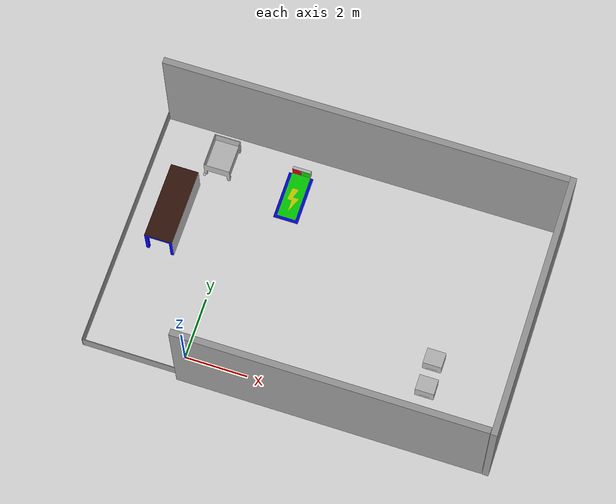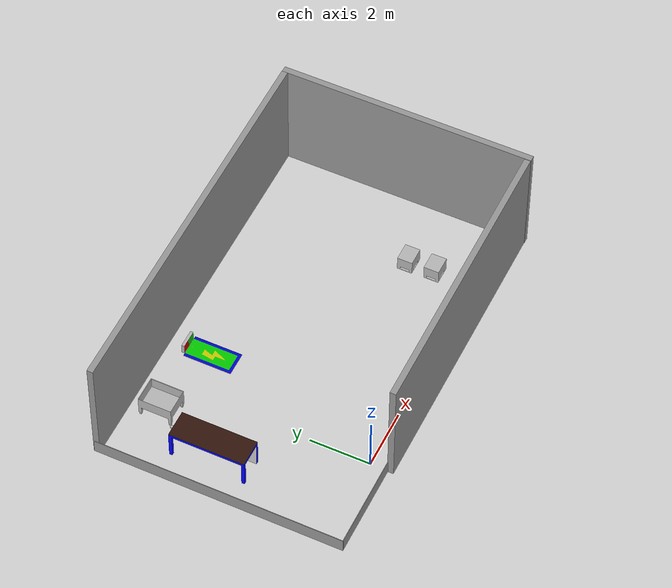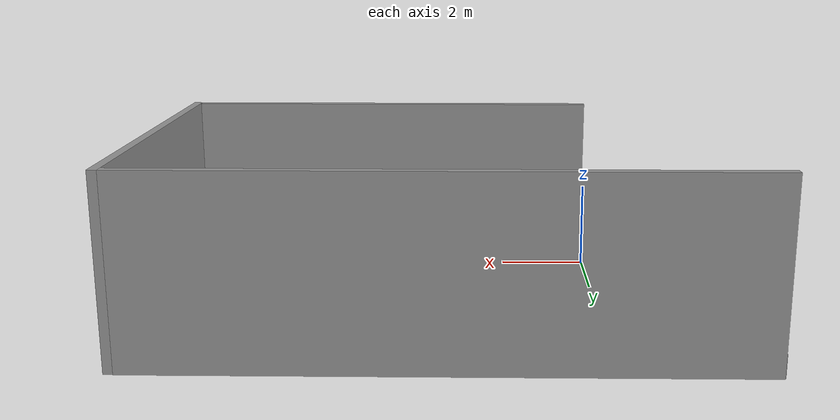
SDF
<sdf version="1.6">
 <world name="default">
  <light name="sun" type="directional">
   <pose>0 0 10 0 -0 0</pose>
   <diffuse>0.8 0.8 0.8 1</diffuse>
   <specular>0.2 0.2 0.2 1</specular>
   <attenuation>
    <range>1000</range>
    <constant>0.9</constant>
    <linear>0.01</linear>
    <quadratic>0.001</quadratic>
   </attenuation>
   <direction>-0.5 0.1 -0.9</direction>
  </light>
  <gravity>0 0 -9.8</gravity>
  <magnetic_field>6e-06 2.3e-05 -4.2e-05</magnetic_field>
  <atmosphere type="adiabatic"/>
  <physics name="default_physics" default="0" type="ode">
   <max_step_size>0.001</max_step_size>
   <real_time_factor>1</real_time_factor>
   <real_time_update_rate>1000</real_time_update_rate>
  </physics>
  <scene><ambient>0.4 0.4 0.4 1</ambient><background>0.7 0.7 0.7 1</background><shadows>1</shadows></scene>
  <audio><device>default</device></audio>
  <spherical_coordinates>
   <surface_model>EARTH_WGS84</surface_model>
   <latitude_deg>0</latitude_deg>
   <longitude_deg>0</longitude_deg>
   <elevation>0</elevation>
   <heading_deg>0</heading_deg>
  </spherical_coordinates>
  <model name="big_wall_20">
   <pose>3.29502 7.5505 0 0 -0 0</pose>
   <link name="Wall_0">
    <collision name="Wall_0_Collision">
     <geometry><box><size>12.8 0.2 4</size></box></geometry>
     <pose>0 0 2 0 -0 0</pose>
    </collision>
    <visual name="Wall_0_Visual">
     <pose>0 0 2 0 -0 0</pose>
     <geometry><box><size>12.8 0.2 4</size></box></geometry>
     <material>
      <script><uri>file://media/materials/scripts/gazebo.material</uri><name>Gazebo/Grey</name></script>
      <ambient>1 1 1 1</ambient>
     </material>
     <meta><layer>0</layer></meta>
    </visual>
   </link>
   <static>1</static>
  </model>
  <model name="middle_wall_20">
   <pose>4.83212 -0.651579 0 0 -0 0</pose>
   <link name="Wall_1">
    <collision name="Wall_1_Collision">
     <geometry><box><size>9.7 0.2 4</size></box></geometry>
     <pose>0 0 2 0 -0 0</pose>
    </collision>
    <visual name="Wall_1_Visual">
     <pose>0 0 2 0 -0 0</pose>
     <geometry><box><size>9.7 0.2 4</size></box></geometry>
     <material>
      <script><uri>file://media/materials/scripts/gazebo.material</uri><name>Gazebo/Grey</name></script>
      <ambient>1 1 1 1</ambient>
     </material>
     <meta><layer>0</layer></meta>
    </visual>
   </link>
   <static>1</static>
  </model>
  <model name="little_wall_840">
   <pose>9.79443 3.43939 0 0 0 -1.57021</pose>
   <link name="Wall_0">
    <collision name="Wall_0_Collision">
     <geometry><box><size>8.4 0.2 4</size></box></geometry>
     <pose>0 0 2 0 -0 0</pose>
    </collision>
    <visual name="Wall_0_Visual">
     <pose>0 0 2 0 -0 0</pose>
     <geometry><box><size>8.4 0.2 4</size></box></geometry>
     <material>
      <script><uri>file://media/materials/scripts/gazebo.material</uri><name>Gazebo/Grey</name></script>
      <ambient>1 1 1 1</ambient>
     </material>
     <meta><layer>0</layer></meta>
    </visual>
   </link>
   <static>1</static>
  </model>
  <model name="koruma_duvarı">
   <pose>-3.10962 3.52655 0 0 0 -1.57039</pose>
   <link name="Wall_0">
    <collision name="Wall_0_Collision">
     <geometry><box><size>8.2 0.02 0.5</size></box></geometry>
     <pose>0 0 0.25 0 -0 0</pose>
    </collision>
    <visual name="Wall_0_Visual">
     <pose>0 0 0.25 0 -0 0</pose>
     <geometry><box><size>8.2 0.02 0.5</size></box></geometry>
     <material>
      <script><uri>file://media/materials/scripts/gazebo.material</uri><name>Gazebo/Grey</name></script>
      <ambient>1 1 1 1</ambient>
     </material>
     <meta><layer>0</layer></meta>
    </visual>
   </link>
   <static>1</static>
  </model>
  <model name="koruma_duvarı2">
   <pose>-1.49994 -0.561872 0 0 -0 0</pose>
   <link name="Wall_0">
    <collision name="Wall_0_Collision">
     <geometry><box><size>3.2 0.02 0.5</size></box></geometry>
     <pose>0 0 0.25 0 -0 0</pose>
    </collision>
    <visual name="Wall_0_Visual">
     <pose>0 0 0.25 0 -0 0</pose>
     <geometry><box><size>3.2 0.02 0.5</size></box></geometry>
     <material>
      <script><uri>file://media/materials/scripts/gazebo.material</uri><name>Gazebo/Grey</name></script>
      <ambient>1 1 1 1</ambient>
     </material>
     <meta><layer>0</layer></meta>
    </visual>
   </link>
   <static>1</static>
  </model>
  <model name="QRsarjunitesi">
   <static>1</static>
   <pose>1.10489 6.92295 0.1001 0 -0 0</pose>
   <link name="link">
    <collision name="surface">
     <geometry><mesh><uri>model://QRsarjunitesi/meshes/sarjistasyonu.dae</uri></mesh></geometry>
    </collision>
    <collision name="base">
     <geometry><mesh><uri>model://QRsarjunitesi/meshes/sarjistasyonu.dae</uri></mesh></geometry>
    </collision>
    <visual name="visual">
     <geometry><mesh><uri>model://QRsarjunitesi/meshes/sarjistasyonu.dae</uri></mesh></geometry>
     <material>
      <script>
       <name>QRsarjunitesi</name>
       <uri>model://QRsarjunitesi/materials/scripts</uri>
       <uri>model://QRsarjunitesi/materials/textures</uri>
      </script>
     </material>
    </visual>
   </link>
  </model>
  <model name="kutu">
   <static>1</static>
   <pose>7.32822 1.24296 0.215 0 -0 0</pose>
   <link name="link">
    <collision name="collision">
     <geometry><mesh><uri>model://kutu/meshes/kutu3.dae</uri></mesh></geometry>
    </collision>
    <visual name="visual">
     <geometry><mesh><uri>model://kutu/meshes/kutu3.dae</uri></mesh></geometry>
     <material>
      <script>
       <uri>model://kutu/materials/scripts</uri>
       <uri>model://kutu/materials/textures</uri>
       <name>Kutu/Ahsap</name>
      </script>
     </material>
    </visual>
   </link>
  </model>
  <model name="kutu_0">
   <static>1</static>
   <pose>7.29972 2.13055 0.215 0 -0 0</pose>
   <link name="link">
    <collision name="collision">
     <geometry><mesh><uri>model://kutu/meshes/kutu3.dae</uri></mesh></geometry>
    </collision>
    <visual name="visual">
     <geometry><mesh><uri>model://kutu/meshes/kutu3.dae</uri></mesh></geometry>
     <material>
      <script>
       <uri>model://kutu/materials/scripts</uri>
       <uri>model://kutu/materials/textures</uri>
       <name>Kutu/Ahsap</name>
      </script>
     </material>
    </visual>
   </link>
  </model>
  <model name="masa">
   <static>1</static>
   <pose>-2.00566 4.2746 0.567 0 -0 0</pose>
   <link name="link">
    <collision name="surface">
     <geometry><mesh><uri>model://masa/meshes/masa1.dae</uri></mesh></geometry>
    </collision>
    <collision name="column">
     <geometry><mesh><uri>model://masa/meshes/masa1.dae</uri></mesh></geometry>
    </collision>
    <collision name="base"><geometry><mesh><uri>model://masa/meshes/masa1.dae</uri></mesh></geometry></collision>
    <visual name="visual"><geometry><mesh><uri>model://masa/meshes/masa1.dae</uri></mesh></geometry></visual>
   </link>
  </model>
  <model name="yuk">
   <static>1</static>
   <pose>-1.4125 5.92568 0.1 0 -0 0</pose>
   <link name="link">
    <collision name="surface"><geometry><mesh><uri>model://yuk/meshes/YUK2.dae</uri></mesh></geometry></collision>
    <collision name="base"><geometry><mesh><uri>model://yuk/meshes/YUK2.dae</uri></mesh></geometry></collision>
    <visual name="visual">
     <geometry><mesh><uri>model://yuk/meshes/YUK2.dae</uri></mesh></geometry>
     <material>
      <script>
       <name>Yuk</name>
       <uri>model://yuk/materials/scripts</uri>
       <uri>model://yuk/materials/textures</uri>
      </script>
     </material>
    </visual>
    <visual name="wheel1_visual">
     <geometry><cylinder><radius>0.05</radius><length>0.02</length></cylinder></geometry>
    </visual>
   </link>
  </model>
 </world>
</sdf>
